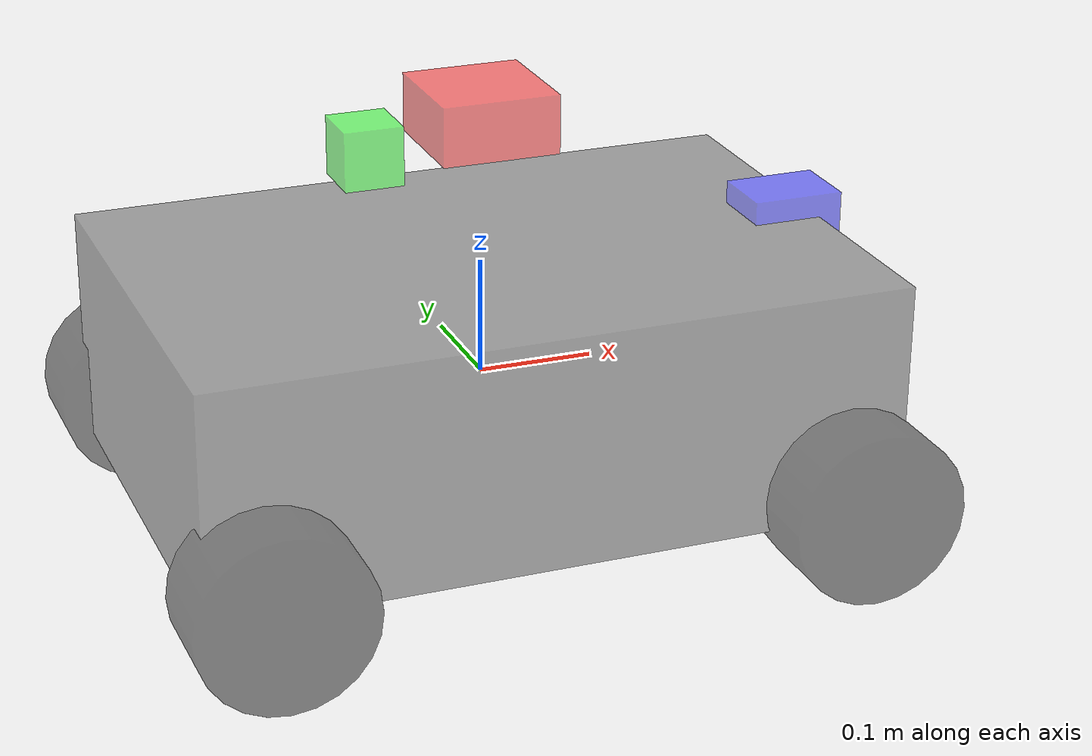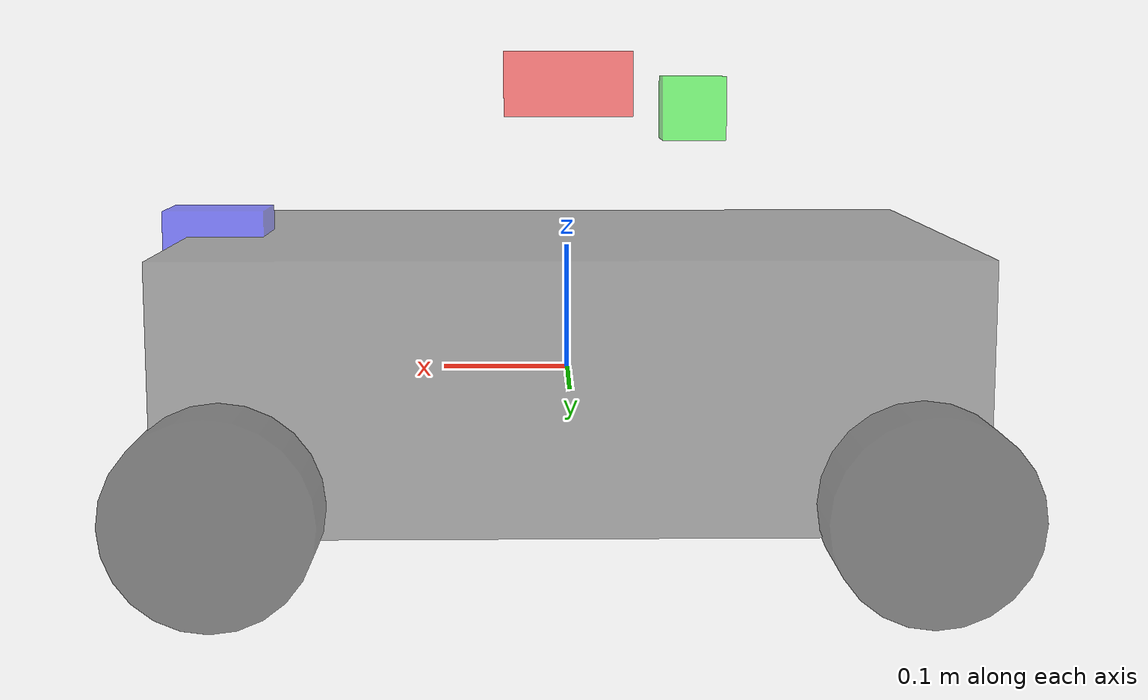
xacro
<?xml version="1.0" encoding="UTF-8"?>
<!-- Scout Mini Pro主模型：仅整合，无冗余逻辑 -->
<robot name="scout_mini_pro" xmlns:xacro="http://www.ros.org/wiki/xacro">
    <!-- ==================== 1. 全局参数定义（集中管理，一键修改） ==================== -->
    <!-- 车身参数 -->
    <xacro:property name="base_length" value="0.6" />
    <xacro:property name="base_width" value="0.4" />
    <xacro:property name="base_height" value="0.2" />
    <xacro:property name="base_mass" value="5.0" />      <!-- 质量(kg) -->
    <!-- 车轮参数 -->
    <xacro:property name="wheel_diameter" value="0.15" /> <!-- 直径(m) -->
    <xacro:property name="wheel_width" value="0.08" />   <!-- 宽度(m) -->
    <xacro:property name="wheel_mass" value="0.5" />     <!-- 单轮质量(kg) -->
    <xacro:property name="wheel_x_offset" value="0.25" /> <!-- 车轮前后偏移 -->
    <xacro:property name="wheel_y_offset" value="0.22" /> <!-- 车轮左右偏移 -->
    <xacro:property name="wheel_z_offset" value="${-wheel_diameter/2}" /> <!-- 车轮z轴偏移 -->

    <!-- ==================== 2. 引用子文件（模块化核心） ==================== -->
    <xacro:include filename="$(find scout_mini_pro_description)/xacro/macro/common_macros.xacro" />
    <xacro:include filename="$(find scout_mini_pro_description)/xacro/macro/gazebo_diff_drive.xacro" />
    <xacro:include filename="$(find scout_mini_pro_description)/xacro/macro/gazebo_sensor_plugin.xacro" />
    <xacro:include filename="$(find scout_mini_pro_description)/xacro/actuator/wheel.xacro" />
    <xacro:include filename="$(find scout_mini_pro_description)/xacro/sensor/camera_d435.xacro" />
    <xacro:include filename="$(find scout_mini_pro_description)/xacro/sensor/laser_helios.xacro" />
    <xacro:include filename="$(find scout_mini_pro_description)/xacro/sensor/imu_ch110.xacro" />

    <!-- ==================== 3. base_footprint 虚拟部件（距地 0.01m，作为坐标参考） ==================== -->
    <link name="base_footprint" />

    <!-- ==================== 4. 车身主体（base_link） ==================== -->
    <link name="base_link">
        <!-- 视觉：长方体车身（深灰色） -->
        <visual>
            <origin xyz="0 0 0" />
            <geometry><box size="${base_length} ${base_width} ${base_height}" /></geometry>
            <material name="base_gray"><color rgba="0.3 0.3 0.3 0.5" /></material>
        </visual>
        <!-- 碰撞：与视觉一致 -->
        <collision>
            <origin xyz="0 0 0" />
            <geometry><box size="${base_length} ${base_width} ${base_height}" /></geometry>
        </collision>
        <!-- 惯性：长方体惯性矩 -->
        <inertial>
            <mass value="${base_mass}" />
            <inertia ixx="${(1/12)*base_mass*(base_width**2 + base_height**2)}"
                     ixy="0" ixz="0"
                     iyy="${(1/12)*base_mass*(base_length**2 + base_height**2)}"
                     iyz="0"
                     izz="${(1/12)*base_mass*(base_length**2 + base_width**2)}" />
        </inertial>
        <!-- Gazebo属性：阻尼+材质（简单字符串形式，Gazebo 11 兼容性更好） -->
        <gazebo reference="base_link">
            <material>Gazebo/DarkGrey</material>
            <linear_damping>0.1</linear_damping>
            <angular_damping>0.1</angular_damping>
        </gazebo>
    </link>

    <!-- base_footprint 到 base_link 的固定关节（z=0.01 使车体贴合地面） -->
    <joint name="base_footprint_joint" type="fixed">
        <parent link="base_footprint" />
        <child link="base_link" />
        <origin xyz="0 0 0.01" rpy="0 0 0" />
    </joint>

    <!-- ==================== 5. 传动宏（Gazebo差速驱动，4轮） ==================== -->
    <xacro:transmission joint_name="front_left_wheel_joint" />
    <xacro:transmission joint_name="front_right_wheel_joint" />
    <xacro:transmission joint_name="rear_left_wheel_joint" />
    <xacro:transmission joint_name="rear_right_wheel_joint" />

    <!-- ==================== 6. Gazebo 差速驱动与关节状态（由宏统一管理参数） ==================== -->
    <xacro:gazebo_diff_drive
        robot_namespace="/scout_mini_pro"
        left_joint="rear_left_wheel_joint"
        right_joint="rear_right_wheel_joint"
        wheel_separation="${2*wheel_y_offset}"
        wheel_diameter="${wheel_diameter}"
        command_topic="cmd_vel"
        odometry_topic="odom"
        odometry_frame="odom"
        robot_base_frame="base_footprint"
        publish_tf="true"
        publish_wheel_joint_state="false"
        update_rate="50.0"
        wheel_torque="300"
        wheel_acceleration="50.0" />

    <xacro:gazebo_joint_state_publisher
        robot_namespace="/scout_mini_pro"
        update_rate="50.0" />

    <!-- ==================== 7. Gazebo 传感器插件（激光雷达、相机、IMU，由 gazebo_sensor_plugin.xacro 统一管理） ==================== -->
    <xacro:gazebo_laser_plugin robot_namespace="/scout_mini_pro" topic="scan" frame_name="laser_link" />
    <!-- RGB 相机：可靠发布 image_raw 与 camera_info（libgazebo_ros_camera 较稳定，避免仅依赖深度插件） -->
    <xacro:gazebo_camera_plugin robot_namespace="/scout_mini_pro" link_ref="camera_link"
        topic_image="image_raw" topic_info="camera_info" frame_name="camera_link" />
    <!-- 深度相机：挂在 camera_link，发布深度图、点云（可与 RGB 相机并存） -->
    <!-- 深度相机话题统一为 /scout_mini_pro/depth/...，避免 /camera/camera/... 嵌套 -->
    <xacro:gazebo_depth_camera_plugin robot_namespace="/scout_mini_pro" link_ref="camera_link" topic_prefix="depth" frame_name="camera_link" />
</robot>

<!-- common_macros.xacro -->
<!-- 通用宏定义：车轮宏 + 传感器固定宏 -->
<robot name="common_macros" xmlns:xacro="http://www.ros.org/wiki/xacro">
    <xacro:property name="M_PI" value="3.1415926535897931" />
    <!-- ==================== 车轮通用宏 ==================== -->
    <!-- 参数：车轮名、偏移量、关节名、车轮尺寸/质量（从主文件传参）；mu1/mu2 可选，驱动轮用高摩擦、被动轮用低摩擦以免转向时被"抱死" -->
    <xacro:macro name="wheel" params="wheel_name x y z joint_name wheel_diameter wheel_width wheel_mass mu1:=1.0 mu2:=0.8">
        <link name="${wheel_name}">
            <!-- 视觉：圆柱车轮（旋转90度贴合滚动方向） -->
            <visual>
                <origin xyz="0 0 0" rpy="${M_PI/2} 0 0" />
                <geometry><cylinder length="${wheel_width}" radius="${wheel_diameter/2}" /></geometry>
                <material name="wheel_black"><color rgba="0 0 0 0.5" /></material>
            </visual>
            <!-- 碰撞：与视觉一致 -->
            <collision>
                <origin xyz="0 0 0" rpy="${M_PI/2} 0 0" />
                <geometry><cylinder length="${wheel_width}" radius="${wheel_diameter/2}" /></geometry>
            </collision>
            <!-- 惯性：圆柱惯性矩（轴沿 Y，h=wheel_width, r=diameter/2） -->
            <inertial>
                <mass value="${wheel_mass}" />
                <inertia ixx="${0.25*wheel_mass*(wheel_diameter/2)**2 + (1/12)*wheel_mass*wheel_width**2}"
                         ixy="0" ixz="0"
                         iyy="${0.5*wheel_mass*(wheel_diameter/2)**2}"
                         iyz="0"
                         izz="${0.25*wheel_mass*(wheel_diameter/2)**2 + (1/12)*wheel_mass*wheel_width**2}" />
            </inertial>
        </link>
        <gazebo reference="${wheel_name}">
            <material>Gazebo/FlatBlack</material>
            <mu1>${mu1}</mu1> <mu2>${mu2}</mu2>
        </gazebo>
        <!-- 车轮关节：连续旋转关节 -->
        <joint name="${joint_name}" type="continuous">
            <origin xyz="${x} ${y} ${z}" />
            <parent link="base_link" />
            <child link="${wheel_name}" />
            <axis xyz="0 1 0" /> <!-- 绕y轴旋转 -->
            <limit effort="100" velocity="100" />
        </joint>
    </xacro:macro>

    <!-- ==================== 传感器固定宏 ==================== -->
    <!-- 参数：传感器名、偏移量、关节名、尺寸、质量、颜色、可选 rpy（默认 0 0 0，相机需 pitch -90° 使光学轴朝前） -->
    <xacro:macro name="sensor_fixed" params="sensor_name x y z joint_name size_x size_y size_z mass color_r color_g color_b color_a:=1.0 gazebo_material:=Gazebo/Grey rpy_r:=0 rpy_p:=0 rpy_y:=0">
        <link name="${sensor_name}">
            <!-- 视觉：简化长方体 + 自定义颜色 -->
            <visual>
                <origin xyz="0 0 0" />
                <geometry><box size="${size_x} ${size_y} ${size_z}" /></geometry>
                <material name="${sensor_name}_color"><color rgba="${color_r} ${color_g} ${color_b} ${color_a}" /></material>
            </visual>
            <!-- 碰撞：简化长方体 -->
            <collision>
                <origin xyz="0 0 0" />
                <geometry><box size="${size_x} ${size_y} ${size_z}" /></geometry>
            </collision>
            <!-- 惯性：长方体惯性矩（I_xx=(1/12)*m*(b²+c²) 等） -->
            <inertial>
                <mass value="${mass}" />
                <inertia ixx="${(1/12)*mass*(size_y**2 + size_z**2)}" ixy="0" ixz="0"
                         iyy="${(1/12)*mass*(size_x**2 + size_z**2)}" iyz="0"
                         izz="${(1/12)*mass*(size_x**2 + size_y**2)}" />
            </inertial>
            <!-- Gazebo属性：简单字符串形式（如 Gazebo/Blue、Gazebo/Red） -->
            <gazebo reference="${sensor_name}">
                <material>${gazebo_material}</material>
            </gazebo>
        </link>
        <!-- 传感器关节：固定关节（无运动），rpy 用于相机等需朝向的传感器 -->
        <joint name="${joint_name}" type="fixed">
            <origin xyz="${x} ${y} ${z}" rpy="${rpy_r} ${rpy_p} ${rpy_y}" />
            <parent link="base_link" />
            <child link="${sensor_name}" />
        </joint>
    </xacro:macro>

    <!-- 仅 link+joint，不输出 gazebo 块；用于激光等需在同一 link 上合并 material 与 sensor 的情况，避免两个 gazebo 块导致插件不加载 -->
    <xacro:macro name="sensor_fixed_no_gazebo" params="sensor_name x y z joint_name size_x size_y size_z mass color_r color_g color_b color_a:=1.0 rpy_r:=0 rpy_p:=0 rpy_y:=0">
        <link name="${sensor_name}">
            <visual>
                <origin xyz="0 0 0" />
                <geometry><box size="${size_x} ${size_y} ${size_z}" /></geometry>
                <material name="${sensor_name}_color"><color rgba="${color_r} ${color_g} ${color_b} ${color_a}" /></material>
            </visual>
            <collision>
                <origin xyz="0 0 0" />
                <geometry><box size="${size_x} ${size_y} ${size_z}" /></geometry>
            </collision>
            <inertial>
                <mass value="${mass}" />
                <inertia ixx="${(1/12)*mass*(size_y**2 + size_z**2)}" ixy="0" ixz="0"
                         iyy="${(1/12)*mass*(size_x**2 + size_z**2)}" iyz="0"
                         izz="${(1/12)*mass*(size_x**2 + size_y**2)}" />
            </inertial>
        </link>
        <joint name="${joint_name}" type="fixed">
            <origin xyz="${x} ${y} ${z}" rpy="${rpy_r} ${rpy_p} ${rpy_y}" />
            <parent link="base_link" />
            <child link="${sensor_name}" />
        </joint>
    </xacro:macro>

    <!-- ==================== 传动装置宏（Gazebo差速驱动） ==================== -->
    <xacro:macro name="transmission" params="joint_name">
        <transmission name="${joint_name}_trans">
            <type>transmission_interface/SimpleTransmission</type>
            <joint name="${joint_name}"><hardwareInterface>hardware_interface/VelocityJointInterface</hardwareInterface></joint>
            <actuator name="${joint_name}_motor"><hardwareInterface>hardware_interface/VelocityJointInterface</hardwareInterface><mechanicalReduction>1</mechanicalReduction></actuator>
        </transmission>
    </xacro:macro>
</robot>

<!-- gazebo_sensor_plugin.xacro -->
<!-- Gazebo 传感器插件宏：激光雷达、相机、IMU 的话题与参数集中管理，便于调整 -->
<robot xmlns:xacro="http://www.ros.org/wiki/xacro">
    <xacro:property name="M_PI" value="3.1415926535897931" />

    <!-- ==================== 激光雷达插件（LaserScan） ==================== -->
    <xacro:macro name="gazebo_laser_plugin" params="
        robot_namespace:=/scout_mini_pro
        link_ref:=laser_link
        topic:=scan
        frame_name:=laser_link
        update_rate:=10.0
        samples:=360
        angle_min:=-${M_PI}
        angle_max:=${M_PI}
        range_min:=0.1
        range_max:=10.0">
        <gazebo reference="${link_ref}">
            <!-- laser_link 仅保留此一个 gazebo 块，material 与 sensor 同块，避免两块导致 ray_sensor 插件不加载 -->
            <material>Gazebo/Red</material>
            <!-- 与教程一致使用 ray，直接发布到全局 /scan，避免“有话题无消息” -->
            <sensor name="laserscan" type="ray">
                <pose>0 0 0 0 0 0</pose>
                <always_on>true</always_on>
                <update_rate>${update_rate}</update_rate>
                <visualize>true</visualize>
                <ray>
                    <scan>
                        <horizontal>
                            <samples>${samples}</samples>
                            <resolution>1</resolution>
                            <min_angle>${angle_min}</min_angle>
                            <max_angle>${angle_max}</max_angle>
                        </horizontal>
                        <vertical>
                            <samples>1</samples>
                            <resolution>1</resolution>
                            <min_angle>0</min_angle>
                            <max_angle>0</max_angle>
                        </vertical>
                    </scan>
                    <range>
                        <min>${range_min}</min>
                        <max>${range_max}</max>
                        <resolution>0.01</resolution>
                    </range>
                </ray>
                <!-- ROS2 Humble: libgazebo_ros_ray_sensor.so + LaserScan -->
                <plugin name="laserscan" filename="libgazebo_ros_ray_sensor.so">
                    <ros>
                        <remapping>~/out:=/scan</remapping>
                    </ros>
                    <output_type>sensor_msgs/LaserScan</output_type>
                    <frame_name>${frame_name}</frame_name>
                </plugin>
            </sensor>
        </gazebo>
    </xacro:macro>

    <!-- ==================== 相机插件（Image + CameraInfo） ==================== -->
    <!-- 使用扁平话题名，避免 camera/camera/... 嵌套：image_raw、camera_info -->
    <xacro:macro name="gazebo_camera_plugin" params="
        robot_namespace:=/scout_mini_pro
        link_ref:=camera_link
        topic_image:=image_raw
        topic_info:=camera_info
        frame_name:=camera_link
        update_rate:=30.0
        width:=640
        height:=480
        hfov:=1.0472">
        <gazebo reference="${link_ref}">
            <sensor name="camera" type="camera">
                <always_on>true</always_on>
                <update_rate>${update_rate}</update_rate>
                <visualize>true</visualize>
                <camera>
                    <horizontal_fov>${hfov}</horizontal_fov>
                    <image>
                        <width>${width}</width>
                        <height>${height}</height>
                        <format>R8G8B8</format>
                    </image>
                    <clip>
                        <near>0.02</near>
                        <far>300</far>
                    </clip>
                </camera>
                <plugin name="camera_controller" filename="libgazebo_ros_camera.so">
                    <robotNamespace>${robot_namespace}</robotNamespace>
                    <ros>
                        <namespace>${robot_namespace}</namespace>
                        <remapping>image_raw:=${topic_image}</remapping>
                        <remapping>camera_info:=${topic_info}</remapping>
                    </ros>
                    <camera_name>camera</camera_name>
                    <!-- 插件实际读取 frameName（驼峰），否则 header.frame_id 为空导致 RViz "Frame [] does not exist" -->
                    <frameName>${frame_name}</frameName>
                    <frame_name>${frame_name}</frame_name>
                    <hack_baseline>0.07</hack_baseline>
                </plugin>
            </sensor>
        </gazebo>
    </xacro:macro>

    <!-- ==================== 深度相机插件（Depth Image + PointCloud2，D435 模拟） ==================== -->
    <xacro:macro name="gazebo_depth_camera_plugin" params="
        robot_namespace:=/scout_mini_pro
        link_ref:=camera_link
        topic_prefix:=camera
        frame_name:=camera_link
        update_rate:=30.0
        width:=640
        height:=480
        hfov:=1.0472
        clip_near:=0.1
        clip_far:=10.0">
        <gazebo reference="${link_ref}">
            <sensor name="depth_camera" type="depth">
                <always_on>true</always_on>
                <update_rate>${update_rate}</update_rate>
                <visualize>true</visualize>
                <camera name="depth_head">
                    <horizontal_fov>${hfov}</horizontal_fov>
                    <image>
                        <width>${width}</width>
                        <height>${height}</height>
                        <format>R8G8B8</format>
                    </image>
                    <clip>
                        <near>${clip_near}</near>
                        <far>${clip_far}</far>
                    </clip>
                </camera>
                <plugin name="depth_camera_controller" filename="libgazebo_ros_depth_camera.so">
                    <robotNamespace>${robot_namespace}</robotNamespace>
                    <ros>
                        <namespace>${robot_namespace}</namespace>
                    </ros>
                    <!-- 父类 GazeboRosCameraUtils 会发布一组 image+camera_info，必须与深度图话题区分，否则 /depth/camera_info 被占导致 RViz No CameraInfo -->
                    <imageTopicName>rgb/image_raw</imageTopicName>
                    <cameraInfoTopicName>rgb/camera_info</cameraInfoTopicName>
                    <alwaysOn>true</alwaysOn>
                    <updateRate>${update_rate}</updateRate>
                    <cameraName>${topic_prefix}</cameraName>
                    <!-- 深度图与 camera_info 独占 depth/image_raw、depth/camera_info，与父类 rgb/ 话题不冲突 -->
                    <depthImageTopicName>image_raw</depthImageTopicName>
                    <depthImageCameraInfoTopicName>camera_info</depthImageCameraInfoTopicName>
                    <pointCloudTopicName>points</pointCloudTopicName>
                    <!-- 与 RGB 一致：同时提供 frameName/frame_name，确保 header.frame_id 被正确设置 -->
                    <frameName>${frame_name}</frameName>
                    <frame_name>${frame_name}</frame_name>
                    <pointCloudCutoff>${clip_near}</pointCloudCutoff>
                    <pointCloudCutoffMax>${clip_far}</pointCloudCutoffMax>
                    <hackBaseline>0.07</hackBaseline>
                </plugin>
            </sensor>
        </gazebo>
    </xacro:macro>

    <!-- ==================== IMU 插件（Imu） ==================== -->
    <xacro:macro name="gazebo_imu_plugin" params="
        robot_namespace:=/scout_mini_pro
        link_ref:=imu_link
        topic:=imu
        frame_name:=imu_link
        update_rate:=100.0
        gaussian_noise:=0.0">
        <gazebo reference="${link_ref}">
            <sensor name="imu_sensor" type="imu">
                <always_on>true</always_on>
                <update_rate>${update_rate}</update_rate>
                <visualize>true</visualize>
                <imu>
                    <angular_velocity>
                        <x>
                            <noise type="gaussian" mean="0.0" stddev="${gaussian_noise}" bias_mean="0.0" bias_stddev="0.0" />
                        </x>
                        <y>
                            <noise type="gaussian" mean="0.0" stddev="${gaussian_noise}" bias_mean="0.0" bias_stddev="0.0" />
                        </y>
                        <z>
                            <noise type="gaussian" mean="0.0" stddev="${gaussian_noise}" bias_mean="0.0" bias_stddev="0.0" />
                        </z>
                    </angular_velocity>
                    <linear_acceleration>
                        <x>
                            <noise type="gaussian" mean="0.0" stddev="${gaussian_noise}" bias_mean="0.0" bias_stddev="0.0" />
                        </x>
                        <y>
                            <noise type="gaussian" mean="0.0" stddev="${gaussian_noise}" bias_mean="0.0" bias_stddev="0.0" />
                        </y>
                        <z>
                            <noise type="gaussian" mean="0.0" stddev="${gaussian_noise}" bias_mean="0.0" bias_stddev="0.0" />
                        </z>
                    </linear_acceleration>
                </imu>
                <plugin name="imu_plugin" filename="libgazebo_ros_imu_sensor.so">
                    <ros>
                        <namespace>${robot_namespace}</namespace>
                        <remapping>~/out:=${topic}</remapping>
                    </ros>
                    <frame_name>${frame_name}</frame_name>
                    <initial_orientation_as_reference>false</initial_orientation_as_reference>
                </plugin>
            </sensor>
        </gazebo>
    </xacro:macro>
</robot>
